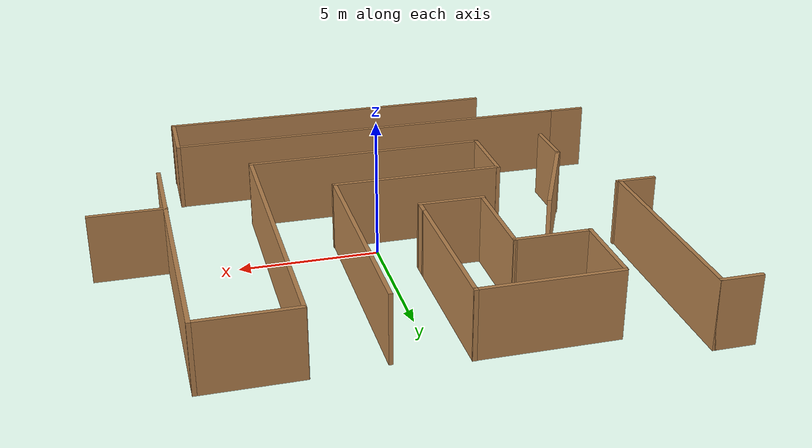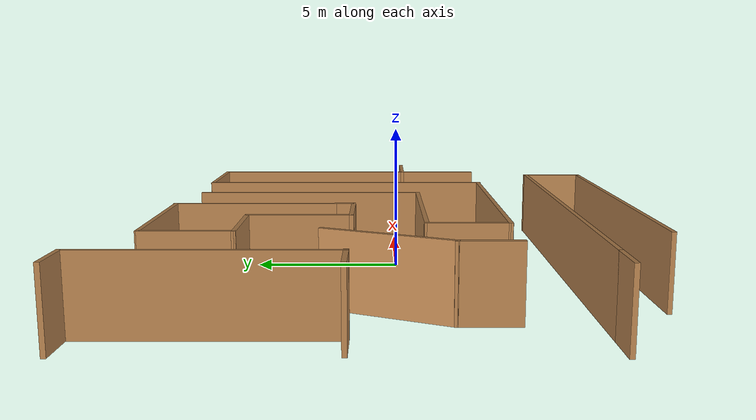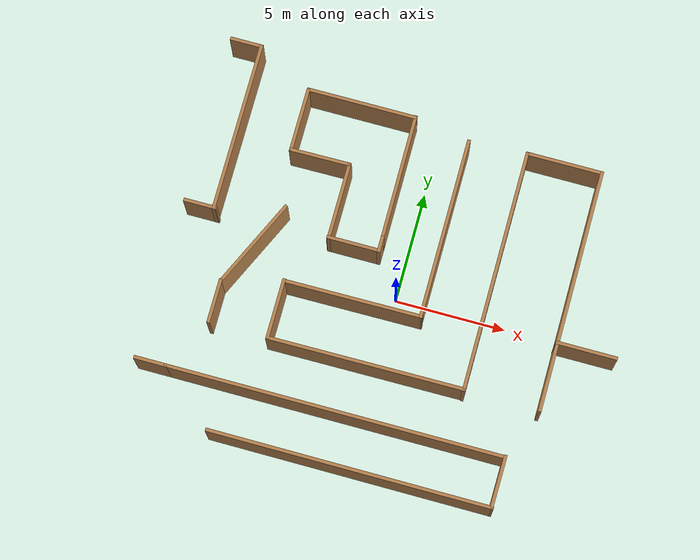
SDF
<?xml version='1.0'?>
<sdf version='1.7'>
  <model name='world_text'>
    <pose>-0.056878 0.510966 0 0 -0 0</pose>
    <link name='Wall_122'>
      <collision name='Wall_122_Collision'>
        <geometry>
          <box>
            <size>2.91914 0.15 2.5</size>
          </box>
        </geometry>
        <pose>0 0 1.25 0 -0 0</pose>
      </collision>
      <visual name='Wall_122_Visual'>
        <pose>0 0 1.25 0 -0 0</pose>
        <geometry>
          <box>
            <size>2.91914 0.15 2.5</size>
          </box>
        </geometry>
        <material>
          <script>
            <uri>file://media/materials/scripts/gazebo.material</uri>
            <name>Gazebo/Wood</name>
          </script>
          <ambient>1 1 1 1</ambient>
        </material>
        <meta>
          <layer>0</layer>
        </meta>
      </visual>
      <pose>-6.01796 5.75428 0 0 -0 -1.5708</pose>
    </link>
    <link name='Wall_124'>
      <collision name='Wall_124_Collision'>
        <geometry>
          <box>
            <size>5.76529 0.15 2.5</size>
          </box>
        </geometry>
        <pose>0 0 1.25 0 -0 0</pose>
      </collision>
      <visual name='Wall_124_Visual'>
        <pose>0 0 1.25 0 -0 0</pose>
        <geometry>
          <box>
            <size>5.76529 0.15 2.5</size>
          </box>
        </geometry>
        <material>
          <script>
            <uri>file://media/materials/scripts/gazebo.material</uri>
            <name>Gazebo/Wood</name>
          </script>
          <ambient>1 1 1 1</ambient>
        </material>
        <meta>
          <layer>0</layer>
        </meta>
      </visual>
      <pose>-1.12773 4.39352 0 0 -0 1.57557</pose>
    </link>
    <link name='Wall_125'>
      <collision name='Wall_125_Collision'>
        <geometry>
          <box>
            <size>5 0.15 2.5</size>
          </box>
        </geometry>
        <pose>0 0 1.25 0 -0 0</pose>
      </collision>
      <visual name='Wall_125_Visual'>
        <pose>0 0 1.25 0 -0 0</pose>
        <geometry>
          <box>
            <size>5 0.15 2.5</size>
          </box>
        </geometry>
        <material>
          <script>
            <uri>file://media/materials/scripts/gazebo.material</uri>
            <name>Gazebo/Wood</name>
          </script>
          <ambient>1 1 1 1</ambient>
        </material>
        <meta>
          <layer>0</layer>
        </meta>
      </visual>
      <pose>-3.56614 7.18772 0 0 -0 3.14159</pose>
    </link>
    <link name='Wall_127'>
      <collision name='Wall_127_Collision'>
        <geometry>
          <box>
            <size>8.25 0.15 2.5</size>
          </box>
        </geometry>
        <pose>0 0 1.25 0 -0 0</pose>
      </collision>
      <visual name='Wall_127_Visual'>
        <pose>0 0 1.25 0 -0 0</pose>
        <geometry>
          <box>
            <size>8.25 0.15 2.5</size>
          </box>
        </geometry>
        <material>
          <script>
            <uri>file://media/materials/scripts/gazebo.material</uri>
            <name>Gazebo/Wood</name>
          </script>
          <ambient>1 1 1 1</ambient>
        </material>
        <meta>
          <layer>0</layer>
        </meta>
      </visual>
      <pose>1.39608 2.6985 0 0 -0 -1.5708</pose>
    </link>
    <link name='Wall_128'>
      <collision name='Wall_128_Collision'>
        <geometry>
          <box>
            <size>6.29579 0.15 2.5</size>
          </box>
        </geometry>
        <pose>0 0 1.25 0 -0 0</pose>
      </collision>
      <visual name='Wall_128_Visual'>
        <pose>0 0 1.25 0 -0 0</pose>
        <geometry>
          <box>
            <size>6.29579 0.15 2.5</size>
          </box>
        </geometry>
        <material>
          <script>
            <uri>file://media/materials/scripts/gazebo.material</uri>
            <name>Gazebo/Wood</name>
          </script>
          <ambient>0.760784 0.662745 0.627451 1</ambient>
        </material>
        <meta>
          <layer>0</layer>
        </meta>
      </visual>
      <pose>-1.65637 -1.36899 0 0 -0 -3.1359</pose>
    </link>
    <link name='Wall_129'>
      <collision name='Wall_129_Collision'>
        <geometry>
          <box>
            <size>2.75 0.15 2.5</size>
          </box>
        </geometry>
        <pose>0 0 1.25 0 -0 0</pose>
      </collision>
      <visual name='Wall_129_Visual'>
        <pose>0 0 1.25 0 -0 0</pose>
        <geometry>
          <box>
            <size>2.75 0.15 2.5</size>
          </box>
        </geometry>
        <material>
          <script>
            <uri>file://media/materials/scripts/gazebo.material</uri>
            <name>Gazebo/Wood</name>
          </script>
          <ambient>0.760784 0.662745 0.627451 1</ambient>
        </material>
        <meta>
          <layer>0</layer>
        </meta>
      </visual>
      <pose>-4.72922 -2.67482 0 0 -0 -1.5708</pose>
    </link>
    <link name='Wall_131'>
      <collision name='Wall_131_Collision'>
        <geometry>
          <box>
            <size>11 0.15 2.5</size>
          </box>
        </geometry>
        <pose>0 0 1.25 0 -0 0</pose>
      </collision>
      <visual name='Wall_131_Visual'>
        <pose>0 0 1.25 0 -0 0</pose>
        <geometry>
          <box>
            <size>11 0.15 2.5</size>
          </box>
        </geometry>
        <material>
          <script>
            <uri>file://media/materials/scripts/gazebo.material</uri>
            <name>Gazebo/Wood</name>
          </script>
          <ambient>1 1 1 1</ambient>
        </material>
        <meta>
          <layer>0</layer>
        </meta>
      </visual>
      <pose>7.38402 1.4735 0 0 -0 1.5708</pose>
    </link>
    <link name='Wall_137'>
      <collision name='Wall_137_Collision'>
        <geometry>
          <box>
            <size>15.235 0.15 2.5</size>
          </box>
        </geometry>
        <pose>0 0 1.25 0 -0 0</pose>
      </collision>
      <visual name='Wall_137_Visual'>
        <pose>0 0 1.25 0 -0 0</pose>
        <geometry>
          <box>
            <size>15.235 0.15 2.5</size>
          </box>
        </geometry>
        <material>
          <script>
            <uri>file://media/materials/scripts/gazebo.material</uri>
            <name>Gazebo/Wood</name>
          </script>
          <ambient>1 1 1 1</ambient>
        </material>
        <meta>
          <layer>0</layer>
        </meta>
      </visual>
      <pose>-1.077 -6.30737 0 0 -0 0</pose>
    </link>
    <link name='Wall_138'>
      <collision name='Wall_138_Collision'>
        <geometry>
          <box>
            <size>2.41417 0.15 2.5</size>
          </box>
        </geometry>
        <pose>0 0 1.25 0 -0 0</pose>
      </collision>
      <visual name='Wall_138_Visual'>
        <pose>0 0 1.25 0 -0 0</pose>
        <geometry>
          <box>
            <size>2.41417 0.15 2.5</size>
          </box>
        </geometry>
        <material>
          <script>
            <uri>file://media/materials/scripts/gazebo.material</uri>
            <name>Gazebo/Wood</name>
          </script>
          <ambient>1 1 1 1</ambient>
        </material>
        <meta>
          <layer>0</layer>
        </meta>
      </visual>
      <pose>6.45377 -7.416 0 0 -0 -1.58115</pose>
    </link>
    <link name='Wall_139'>
      <collision name='Wall_139_Collision'>
        <geometry>
          <box>
            <size>12.735 0.15 2.5</size>
          </box>
        </geometry>
        <pose>0 0 1.25 0 -0 0</pose>
      </collision>
      <visual name='Wall_139_Visual'>
        <pose>0 0 1.25 0 -0 0</pose>
        <geometry>
          <box>
            <size>12.735 0.15 2.5</size>
          </box>
        </geometry>
        <material>
          <script>
            <uri>file://media/materials/scripts/gazebo.material</uri>
            <name>Gazebo/Wood</name>
          </script>
          <ambient>1 1 1 1</ambient>
        </material>
        <meta>
          <layer>0</layer>
        </meta>
      </visual>
      <pose>0.172997 -8.53636 0 0 -0 3.13973</pose>
    </link>
    <link name='Wall_141'>
      <collision name='Wall_141_Collision'>
        <geometry>
          <box>
            <size>2.75 0.15 2.5</size>
          </box>
        </geometry>
        <pose>0 0 1.25 0 -0 0</pose>
      </collision>
      <visual name='Wall_141_Visual'>
        <pose>0 0 1.25 0 -0 0</pose>
        <geometry>
          <box>
            <size>2.75 0.15 2.5</size>
          </box>
        </geometry>
        <material>
          <script>
            <uri>file://media/materials/scripts/gazebo.material</uri>
            <name>Gazebo/Wood</name>
          </script>
          <ambient>1 1 1 1</ambient>
        </material>
        <meta>
          <layer>0</layer>
        </meta>
      </visual>
      <pose>8.66951 -0.912212 0 0 -0 0</pose>
    </link>
    <link name='Wall_143'>
      <collision name='Wall_143_Collision'>
        <geometry>
          <box>
            <size>11 0.15 2.5</size>
          </box>
        </geometry>
        <pose>0 0 1.25 0 -0 0</pose>
      </collision>
      <visual name='Wall_143_Visual'>
        <pose>0 0 1.25 0 -0 0</pose>
        <geometry>
          <box>
            <size>11 0.15 2.5</size>
          </box>
        </geometry>
        <material>
          <script>
            <uri>file://media/materials/scripts/gazebo.material</uri>
            <name>Gazebo/Wood</name>
          </script>
          <ambient>1 1 1 1</ambient>
        </material>
        <meta>
          <layer>0</layer>
        </meta>
      </visual>
      <pose>4.01443 1.4583 0 0 -0 -1.5708</pose>
    </link>
    <link name='Wall_145'>
      <collision name='Wall_145_Collision'>
        <geometry>
          <box>
            <size>3.5 0.15 2.5</size>
          </box>
        </geometry>
        <pose>0 0 1.25 0 -0 0</pose>
      </collision>
      <visual name='Wall_145_Visual'>
        <pose>0 0 1.25 0 -0 0</pose>
        <geometry>
          <box>
            <size>3.5 0.15 2.5</size>
          </box>
        </geometry>
        <material>
          <script>
            <uri>file://media/materials/scripts/gazebo.material</uri>
            <name>Gazebo/Wood</name>
          </script>
          <ambient>1 1 1 1</ambient>
        </material>
        <meta>
          <layer>0</layer>
        </meta>
      </visual>
      <pose>5.70902 6.8985 0 0 -0 3.14159</pose>
    </link>
    <link name='Wall_148'>
      <collision name='Wall_148_Collision'>
        <geometry>
          <box>
            <size>8.89365 0.15 2.5</size>
          </box>
        </geometry>
        <pose>0 0 1.25 0 -0 0</pose>
      </collision>
      <visual name='Wall_148_Visual'>
        <pose>0 0 1.25 0 -0 0</pose>
        <geometry>
          <box>
            <size>8.89365 0.15 2.5</size>
          </box>
        </geometry>
        <material>
          <script>
            <uri>file://media/materials/scripts/gazebo.material</uri>
            <name>Gazebo/Wood</name>
          </script>
          <ambient>1 1 1 1</ambient>
        </material>
        <meta>
          <layer>0</layer>
        </meta>
      </visual>
      <pose>-0.357397 -3.96311 0 0 -0 -3.13625</pose>
    </link>
    <link name='Wall_150'>
      <collision name='Wall_150_Collision'>
        <geometry>
          <box>
            <size>2.78031 0.15 2.5</size>
          </box>
        </geometry>
        <pose>0 0 1.25 0 -0 0</pose>
      </collision>
      <visual name='Wall_150_Visual'>
        <pose>0 0 1.25 0 -0 0</pose>
        <geometry>
          <box>
            <size>2.78031 0.15 2.5</size>
          </box>
        </geometry>
        <material>
          <script>
            <uri>file://media/materials/scripts/gazebo.material</uri>
            <name>Gazebo/Wood</name>
          </script>
          <ambient>1 1 1 1</ambient>
        </material>
        <meta>
          <layer>0</layer>
        </meta>
      </visual>
      <pose>-4.70285 4.35952 0 0 -0 0.007753</pose>
    </link>
    <link name='Wall_151'>
      <collision name='Wall_151_Collision'>
        <geometry>
          <box>
            <size>3.53368 0.15 2.5</size>
          </box>
        </geometry>
        <pose>0 0 1.25 0 -0 0</pose>
      </collision>
      <visual name='Wall_151_Visual'>
        <pose>0 0 1.25 0 -0 0</pose>
        <geometry>
          <box>
            <size>3.53368 0.15 2.5</size>
          </box>
        </geometry>
        <material>
          <script>
            <uri>file://media/materials/scripts/gazebo.material</uri>
            <name>Gazebo/Wood</name>
          </script>
          <ambient>1 1 1 1</ambient>
        </material>
        <meta>
          <layer>0</layer>
        </meta>
      </visual>
      <pose>-3.36742 2.67787 0 0 -0 -1.57084</pose>
    </link>
    <link name='Wall_152'>
      <collision name='Wall_152_Collision'>
        <geometry>
          <box>
            <size>2.42377 0.15 2.5</size>
          </box>
        </geometry>
        <pose>0 0 1.25 0 -0 0</pose>
      </collision>
      <visual name='Wall_152_Visual'>
        <pose>0 0 1.25 0 -0 0</pose>
        <geometry>
          <box>
            <size>2.42377 0.15 2.5</size>
          </box>
        </geometry>
        <material>
          <script>
            <uri>file://media/materials/scripts/gazebo.material</uri>
            <name>Gazebo/Wood</name>
          </script>
          <ambient>1 1 1 1</ambient>
        </material>
        <meta>
          <layer>0</layer>
        </meta>
      </visual>
      <pose>-2.25101 0.986034 0 0 -0 0</pose>
    </link>
    <link name='Wall_153'>
      <collision name='Wall_153_Collision'>
        <geometry>
          <box>
            <size>0.75 0.15 2.5</size>
          </box>
        </geometry>
        <pose>0 0 1.25 0 -0 0</pose>
      </collision>
      <visual name='Wall_153_Visual'>
        <pose>0 0 1.25 0 -0 0</pose>
        <geometry>
          <box>
            <size>0.75 0.15 2.5</size>
          </box>
        </geometry>
        <material>
          <script>
            <uri>file://media/materials/scripts/gazebo.material</uri>
            <name>Gazebo/Wood</name>
          </script>
          <ambient>1 1 1 1</ambient>
        </material>
        <meta>
          <layer>0</layer>
        </meta>
      </visual>
      <pose>-1.11422 1.28597 0 0 -0 1.57113</pose>
    </link>
    <link name='Wall_155'>
      <collision name='Wall_155_Collision'>
        <geometry>
          <box>
            <size>1.5 0.15 2.5</size>
          </box>
        </geometry>
        <pose>0 0 1.25 0 -0 0</pose>
      </collision>
      <visual name='Wall_155_Visual'>
        <pose>0 0 1.25 0 -0 0</pose>
        <geometry>
          <box>
            <size>1.5 0.15 2.5</size>
          </box>
        </geometry>
        <material>
          <script>
            <uri>file://media/materials/scripts/gazebo.material</uri>
            <name>Gazebo/Wood</name>
          </script>
          <ambient>1 1 1 1</ambient>
        </material>
        <meta>
          <layer>0</layer>
        </meta>
      </visual>
      <pose>-9.17262 0.949214 0 0 -0 3.14159</pose>
    </link>
    <link name='Wall_157'>
      <collision name='Wall_157_Collision'>
        <geometry>
          <box>
            <size>1.5 0.15 2.5</size>
          </box>
        </geometry>
        <pose>0 0 1.25 0 -0 0</pose>
      </collision>
      <visual name='Wall_157_Visual'>
        <pose>0 0 1.25 0 -0 0</pose>
        <geometry>
          <box>
            <size>1.5 0.15 2.5</size>
          </box>
        </geometry>
        <material>
          <script>
            <uri>file://media/materials/scripts/gazebo.material</uri>
            <name>Gazebo/Wood</name>
          </script>
          <ambient>1 1 1 1</ambient>
        </material>
        <meta>
          <layer>0</layer>
        </meta>
      </visual>
      <pose>-9.29451 -6.30737 0 0 -0 3.14159</pose>
    </link>
    <link name='Wall_159'>
      <collision name='Wall_159_Collision'>
        <geometry>
          <box>
            <size>1.5 0.15 2.5</size>
          </box>
        </geometry>
        <pose>0 0 1.25 0 -0 0</pose>
      </collision>
      <visual name='Wall_159_Visual'>
        <pose>0 0 1.25 0 -0 0</pose>
        <geometry>
          <box>
            <size>1.5 0.15 2.5</size>
          </box>
        </geometry>
        <material>
          <script>
            <uri>file://media/materials/scripts/gazebo.material</uri>
            <name>Gazebo/Wood</name>
          </script>
          <ambient>1 1 1 1</ambient>
        </material>
        <meta>
          <layer>0</layer>
        </meta>
      </visual>
      <pose>-9.23402 8.54879 0 0 -0 0</pose>
    </link>
    <link name='Wall_160'>
      <collision name='Wall_160_Collision'>
        <geometry>
          <box>
            <size>7.75 0.15 2.5</size>
          </box>
        </geometry>
        <pose>0 0 1.25 0 -0 0</pose>
      </collision>
      <visual name='Wall_160_Visual'>
        <pose>0 0 1.25 0 -0 0</pose>
        <geometry>
          <box>
            <size>7.75 0.15 2.5</size>
          </box>
        </geometry>
        <material>
          <script>
            <uri>file://media/materials/scripts/gazebo.material</uri>
            <name>Gazebo/Wood</name>
          </script>
          <ambient>1 1 1 1</ambient>
        </material>
        <meta>
          <layer>0</layer>
        </meta>
      </visual>
      <pose>-8.55902 4.74879 0 0 -0 -1.5708</pose>
    </link>
    <link name='Wall_163'>
      <collision name='Wall_163_Collision'>
        <geometry>
          <box>
            <size>4.4541 0.15 2.5</size>
          </box>
        </geometry>
        <pose>0 0 1.25 0 -0 0</pose>
      </collision>
      <visual name='Wall_163_Visual'>
        <pose>0 0 1.25 0 -0 0</pose>
        <geometry>
          <box>
            <size>4.4541 0.15 2.5</size>
          </box>
        </geometry>
        <material>
          <script>
            <uri>file://media/materials/scripts/gazebo.material</uri>
            <name>Gazebo/Wood</name>
          </script>
          <ambient>1 1 1 1</ambient>
        </material>
        <meta>
          <layer>0</layer>
        </meta>
      </visual>
      <pose>-6.45496 -0.155541 0 0 -0 -2.00394</pose>
    </link>
    <link name='Wall_164'>
      <collision name='Wall_164_Collision'>
        <geometry>
          <box>
            <size>2 0.15 2.5</size>
          </box>
        </geometry>
        <pose>0 0 1.25 0 -0 0</pose>
      </collision>
      <visual name='Wall_164_Visual'>
        <pose>0 0 1.25 0 -0 0</pose>
        <geometry>
          <box>
            <size>2 0.15 2.5</size>
          </box>
        </geometry>
        <material>
          <script>
            <uri>file://media/materials/scripts/gazebo.material</uri>
            <name>Gazebo/Wood</name>
          </script>
          <ambient>1 1 1 1</ambient>
        </material>
        <meta>
          <layer>0</layer>
        </meta>
      </visual>
      <pose>-7.37365 -3.03385 0 0 -0 -1.5708</pose>
    </link>
    <static>1</static>
  </model>
</sdf>
